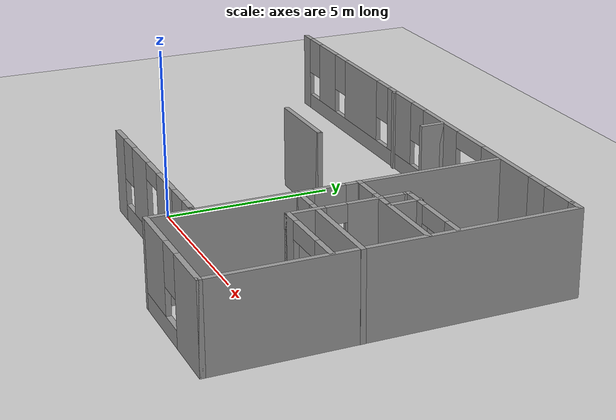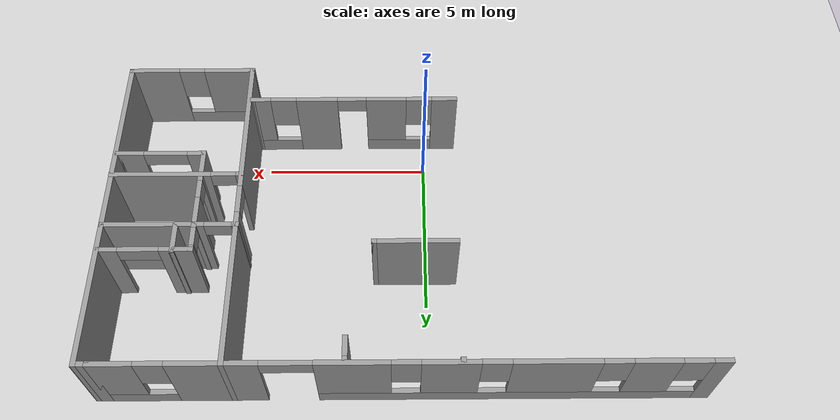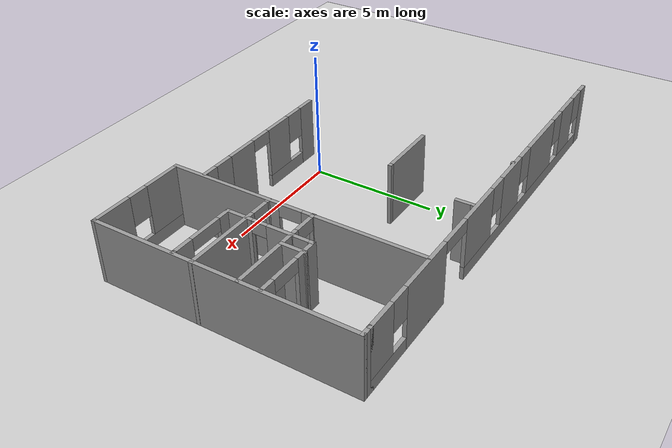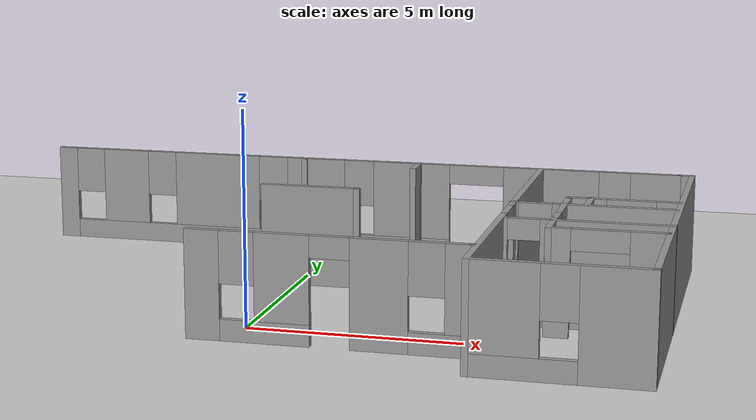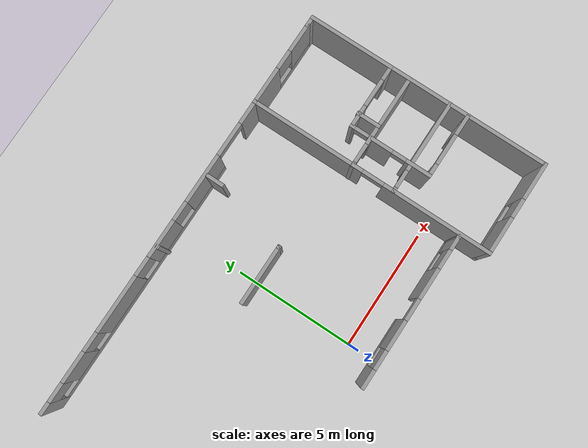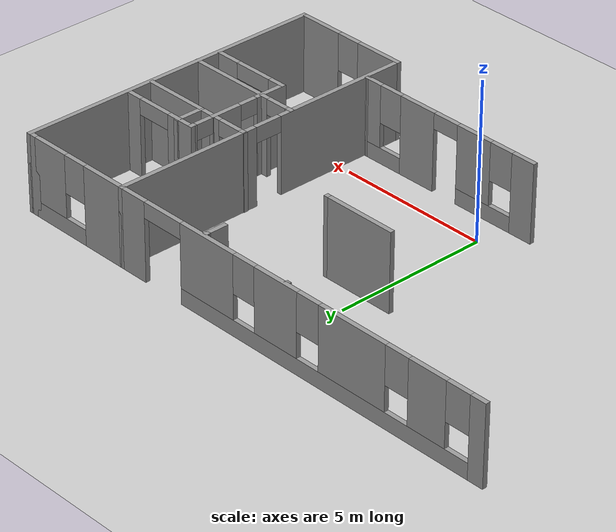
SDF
<sdf version="1.7">
 <world name="default">
  <model name="ground_plane">
   <static>1</static>
   <link name="link">
    <collision name="collision">
     <geometry><plane><normal>0 0 1</normal><size>100 100</size></plane></geometry>
     <surface>
      <contact><collide_bitmask>65535</collide_bitmask></contact>
      <friction><ode><mu>100</mu><mu2>50</mu2></ode></friction>
     </surface>
    </collision>
    <visual name="visual">
     <cast_shadows>0</cast_shadows>
     <geometry><plane><normal>0 0 1</normal><size>100 100</size></plane></geometry>
     <material>
      <script><uri>file://media/materials/scripts/gazebo.material</uri><name>Gazebo/Grey</name></script>
     </material>
    </visual>
   </link>
  </model>
  <model name="Floorplan7">
   <pose>0.685617 0.398656 0 0 -0 0</pose>
   <link name="Wall_0">
    <pose>-0.133018 7.425 0 0 -0 0</pose>
    <visual name="Wall_0_Visual_0">
     <pose>-8.24103 0 1.25 0 -0 0</pose>
     <geometry><box><size>0.517936 0.15 2.5</size></box></geometry>
     <material>
      <script><uri>file://media/materials/scripts/gazebo.material</uri><name>Gazebo/Grey</name></script>
      <ambient>1 1 1 1</ambient>
     </material>
     <meta><layer>0</layer></meta>
    </visual>
    <collision name="Wall_0_Collision_0">
     <geometry><box><size>0.517936 0.15 2.5</size></box></geometry>
     <pose>-8.24103 0 1.25 0 -0 0</pose>
    </collision>
    <visual name="Wall_0_Visual_1">
     <pose>5.19319 0 1.25 0 -0 0</pose>
     <geometry><box><size>2.48084 0.15 2.5</size></box></geometry>
     <material>
      <script><uri>file://media/materials/scripts/gazebo.material</uri><name>Gazebo/Grey</name></script>
      <ambient>1 1 1 1</ambient>
     </material>
     <meta><layer>0</layer></meta>
    </visual>
    <collision name="Wall_0_Collision_1">
     <geometry><box><size>2.48084 0.15 2.5</size></box></geometry>
     <pose>5.19319 0 1.25 0 -0 0</pose>
    </collision>
    <visual name="Wall_0_Visual_2">
     <pose>-2.72761 0 0.25 0 -0 0</pose>
     <geometry><box><size>10.5089 0.15 0.5</size></box></geometry>
     <material>
      <script><uri>file://media/materials/scripts/gazebo.material</uri><name>Gazebo/Grey</name></script>
      <ambient>1 1 1 1</ambient>
     </material>
     <meta><layer>0</layer></meta>
    </visual>
    <collision name="Wall_0_Collision_2">
     <geometry><box><size>10.5089 0.15 0.5</size></box></geometry>
     <pose>-2.72761 0 0.25 0 -0 0</pose>
    </collision>
    <visual name="Wall_0_Visual_3">
     <pose>7.4668 0 0.25 0 -0 0</pose>
     <geometry><box><size>2.06639 0.15 0.5</size></box></geometry>
     <material>
      <script><uri>file://media/materials/scripts/gazebo.material</uri><name>Gazebo/Grey</name></script>
      <ambient>1 1 1 1</ambient>
     </material>
     <meta><layer>0</layer></meta>
    </visual>
    <collision name="Wall_0_Collision_3">
     <geometry><box><size>2.06639 0.15 0.5</size></box></geometry>
     <pose>7.4668 0 0.25 0 -0 0</pose>
    </collision>
    <visual name="Wall_0_Visual_4">
     <pose>-6.53696 0 1.5 0 -0 0</pose>
     <geometry><box><size>1.29021 0.15 2</size></box></geometry>
     <material>
      <script><uri>file://media/materials/scripts/gazebo.material</uri><name>Gazebo/Grey</name></script>
      <ambient>1 1 1 1</ambient>
     </material>
     <meta><layer>0</layer></meta>
    </visual>
    <collision name="Wall_0_Collision_4">
     <geometry><box><size>1.29021 0.15 2</size></box></geometry>
     <pose>-6.53696 0 1.5 0 -0 0</pose>
    </collision>
    <visual name="Wall_0_Visual_5">
     <pose>-3.90061 0 1.5 0 -0 0</pose>
     <geometry><box><size>2.38251 0.15 2</size></box></geometry>
     <material>
      <script><uri>file://media/materials/scripts/gazebo.material</uri><name>Gazebo/Grey</name></script>
      <ambient>1 1 1 1</ambient>
     </material>
     <meta><layer>0</layer></meta>
    </visual>
    <collision name="Wall_0_Collision_5">
     <geometry><box><size>2.38251 0.15 2</size></box></geometry>
     <pose>-3.90061 0 1.5 0 -0 0</pose>
    </collision>
    <visual name="Wall_0_Visual_6">
     <pose>-1.11591 0 1.5 0 -0 0</pose>
     <geometry><box><size>1.58688 0.15 2</size></box></geometry>
     <material>
      <script><uri>file://media/materials/scripts/gazebo.material</uri><name>Gazebo/Grey</name></script>
      <ambient>1 1 1 1</ambient>
     </material>
     <meta><layer>0</layer></meta>
    </visual>
    <collision name="Wall_0_Collision_6">
     <geometry><box><size>1.58688 0.15 2</size></box></geometry>
     <pose>-1.11591 0 1.5 0 -0 0</pose>
    </collision>
    <visual name="Wall_0_Visual_7">
     <pose>1.50218 0 1.5 0 -0 0</pose>
     <geometry><box><size>2.04932 0.15 2</size></box></geometry>
     <material>
      <script><uri>file://media/materials/scripts/gazebo.material</uri><name>Gazebo/Grey</name></script>
      <ambient>1 1 1 1</ambient>
     </material>
     <meta><layer>0</layer></meta>
    </visual>
    <collision name="Wall_0_Collision_7">
     <geometry><box><size>2.04932 0.15 2</size></box></geometry>
     <pose>1.50218 0 1.5 0 -0 0</pose>
    </collision>
    <visual name="Wall_0_Visual_8">
     <pose>1.50218 0 1.5 0 -0 0</pose>
     <geometry><box><size>2.04932 0.15 2</size></box></geometry>
     <material>
      <script><uri>file://media/materials/scripts/gazebo.material</uri><name>Gazebo/Grey</name></script>
      <ambient>1 1 1 1</ambient>
     </material>
     <meta><layer>0</layer></meta>
    </visual>
    <collision name="Wall_0_Collision_8">
     <geometry><box><size>2.04932 0.15 2</size></box></geometry>
     <pose>1.50218 0 1.5 0 -0 0</pose>
    </collision>
    <visual name="Wall_0_Visual_9">
     <pose>7.8668 0 1.5 0 -0 0</pose>
     <geometry><box><size>1.26639 0.15 2</size></box></geometry>
     <material>
      <script><uri>file://media/materials/scripts/gazebo.material</uri><name>Gazebo/Grey</name></script>
      <ambient>1 1 1 1</ambient>
     </material>
     <meta><layer>0</layer></meta>
    </visual>
    <collision name="Wall_0_Collision_9">
     <geometry><box><size>1.26639 0.15 2</size></box></geometry>
     <pose>7.8668 0 1.5 0 -0 0</pose>
    </collision>
    <visual name="Wall_0_Visual_10">
     <pose>-7.58206 0 1.9 0 -0 0</pose>
     <geometry><box><size>0.8 0.15 1.2</size></box></geometry>
     <material>
      <script><uri>file://media/materials/scripts/gazebo.material</uri><name>Gazebo/Grey</name></script>
      <ambient>1 1 1 1</ambient>
     </material>
     <meta><layer>0</layer></meta>
    </visual>
    <collision name="Wall_0_Collision_10">
     <geometry><box><size>0.8 0.15 1.2</size></box></geometry>
     <pose>-7.58206 0 1.9 0 -0 0</pose>
    </collision>
    <visual name="Wall_0_Visual_11">
     <pose>6.83361 0 1.9 0 -0 0</pose>
     <geometry><box><size>0.8 0.15 1.2</size></box></geometry>
     <material>
      <script><uri>file://media/materials/scripts/gazebo.material</uri><name>Gazebo/Grey</name></script>
      <ambient>1 1 1 1</ambient>
     </material>
     <meta><layer>0</layer></meta>
    </visual>
    <collision name="Wall_0_Collision_11">
     <geometry><box><size>0.8 0.15 1.2</size></box></geometry>
     <pose>6.83361 0 1.9 0 -0 0</pose>
    </collision>
    <visual name="Wall_0_Visual_12">
     <pose>-5.49186 0 1.9 0 -0 0</pose>
     <geometry><box><size>0.8 0.15 1.2</size></box></geometry>
     <material>
      <script><uri>file://media/materials/scripts/gazebo.material</uri><name>Gazebo/Grey</name></script>
      <ambient>1 1 1 1</ambient>
     </material>
     <meta><layer>0</layer></meta>
    </visual>
    <collision name="Wall_0_Collision_12">
     <geometry><box><size>0.8 0.15 1.2</size></box></geometry>
     <pose>-5.49186 0 1.9 0 -0 0</pose>
    </collision>
    <visual name="Wall_0_Visual_13">
     <pose>-2.30935 0 1.9 0 -0 0</pose>
     <geometry><box><size>0.8 0.15 1.2</size></box></geometry>
     <material>
      <script><uri>file://media/materials/scripts/gazebo.material</uri><name>Gazebo/Grey</name></script>
      <ambient>1 1 1 1</ambient>
     </material>
     <meta><layer>0</layer></meta>
    </visual>
    <collision name="Wall_0_Collision_13">
     <geometry><box><size>0.8 0.15 1.2</size></box></geometry>
     <pose>-2.30935 0 1.9 0 -0 0</pose>
    </collision>
    <visual name="Wall_0_Visual_14">
     <pose>0.077526 0 1.9 0 -0 0</pose>
     <geometry><box><size>0.8 0.15 1.2</size></box></geometry>
     <material>
      <script><uri>file://media/materials/scripts/gazebo.material</uri><name>Gazebo/Grey</name></script>
      <ambient>1 1 1 1</ambient>
     </material>
     <meta><layer>0</layer></meta>
    </visual>
    <collision name="Wall_0_Collision_14">
     <geometry><box><size>0.8 0.15 1.2</size></box></geometry>
     <pose>0.077526 0 1.9 0 -0 0</pose>
    </collision>
    <visual name="Wall_0_Visual_15">
     <pose>3.2398 0 2.25 0 -0 0</pose>
     <geometry><box><size>1.42592 0.15 0.5</size></box></geometry>
     <material>
      <script><uri>file://media/materials/scripts/gazebo.material</uri><name>Gazebo/Grey</name></script>
      <ambient>1 1 1 1</ambient>
     </material>
     <meta><layer>0</layer></meta>
    </visual>
    <collision name="Wall_0_Collision_15">
     <geometry><box><size>1.42592 0.15 0.5</size></box></geometry>
     <pose>3.2398 0 2.25 0 -0 0</pose>
    </collision>
    <visual name="Wall_0_Visual_16">
     <pose>3.2398 0 2.25 0 -0 0</pose>
     <geometry><box><size>1.42592 0.15 0.5</size></box></geometry>
     <material>
      <script><uri>file://media/materials/scripts/gazebo.material</uri><name>Gazebo/Grey</name></script>
      <ambient>1 1 1 1</ambient>
     </material>
     <meta><layer>0</layer></meta>
    </visual>
    <collision name="Wall_0_Collision_16">
     <geometry><box><size>1.42592 0.15 0.5</size></box></geometry>
     <pose>3.2398 0 2.25 0 -0 0</pose>
    </collision>
   </link>
   <link name="Wall_1">
    <collision name="Wall_1_Collision">
     <geometry><box><size>0.5 0.15 2.5</size></box></geometry>
     <pose>0 0 1.25 0 -0 0</pose>
    </collision>
    <visual name="Wall_1_Visual">
     <pose>0 0 1.25 0 -0 0</pose>
     <geometry><box><size>0.5 0.15 2.5</size></box></geometry>
     <material>
      <script><uri>file://media/materials/scripts/gazebo.material</uri><name>Gazebo/Grey</name></script>
      <ambient>1 1 1 1</ambient>
     </material>
     <meta><layer>0</layer></meta>
    </visual>
    <pose>8.46698 7.425 0 0 -0 0</pose>
   </link>
   <link name="Wall_15">
    <pose>1.51819 -1.45127 0 0 -0 0.00068</pose>
    <visual name="Wall_15_Visual_0">
     <pose>-2.84549 0 1.25 0 -0 0</pose>
     <geometry><box><size>0.799793 0.15 2.5</size></box></geometry>
     <material>
      <script><uri>file://media/materials/scripts/gazebo.material</uri><name>Gazebo/Grey</name></script>
      <ambient>1 1 1 1</ambient>
     </material>
     <meta><layer>0</layer></meta>
    </visual>
    <collision name="Wall_15_Collision_0">
     <geometry><box><size>0.799793 0.15 2.5</size></box></geometry>
     <pose>-2.84549 0 1.25 0 -0 0</pose>
    </collision>
    <visual name="Wall_15_Visual_1">
     <pose>1.15507 0 1.25 0 -0 0</pose>
     <geometry><box><size>1.29419 0.15 2.5</size></box></geometry>
     <material>
      <script><uri>file://media/materials/scripts/gazebo.material</uri><name>Gazebo/Grey</name></script>
      <ambient>1 1 1 1</ambient>
     </material>
     <meta><layer>0</layer></meta>
    </visual>
    <collision name="Wall_15_Collision_1">
     <geometry><box><size>1.29419 0.15 2.5</size></box></geometry>
     <pose>1.15507 0 1.25 0 -0 0</pose>
    </collision>
    <visual name="Wall_15_Visual_2">
     <pose>-1.41881 0 0.25 0 -0 0</pose>
     <geometry><box><size>2.05357 0.15 0.5</size></box></geometry>
     <material>
      <script><uri>file://media/materials/scripts/gazebo.material</uri><name>Gazebo/Grey</name></script>
      <ambient>1 1 1 1</ambient>
     </material>
     <meta><layer>0</layer></meta>
    </visual>
    <collision name="Wall_15_Collision_2">
     <geometry><box><size>2.05357 0.15 0.5</size></box></geometry>
     <pose>-1.41881 0 0.25 0 -0 0</pose>
    </collision>
    <visual name="Wall_15_Visual_3">
     <pose>2.52378 0 0.25 0 -0 0</pose>
     <geometry><box><size>1.44322 0.15 0.5</size></box></geometry>
     <material>
      <script><uri>file://media/materials/scripts/gazebo.material</uri><name>Gazebo/Grey</name></script>
      <ambient>1 1 1 1</ambient>
     </material>
     <meta><layer>0</layer></meta>
    </visual>
    <collision name="Wall_15_Collision_3">
     <geometry><box><size>1.44322 0.15 0.5</size></box></geometry>
     <pose>2.52378 0 0.25 0 -0 0</pose>
    </collision>
    <visual name="Wall_15_Visual_4">
     <pose>-1.01881 0 1.5 0 -0 0</pose>
     <geometry><box><size>1.25357 0.15 2</size></box></geometry>
     <material>
      <script><uri>file://media/materials/scripts/gazebo.material</uri><name>Gazebo/Grey</name></script>
      <ambient>1 1 1 1</ambient>
     </material>
     <meta><layer>0</layer></meta>
    </visual>
    <collision name="Wall_15_Collision_4">
     <geometry><box><size>1.25357 0.15 2</size></box></geometry>
     <pose>-1.01881 0 1.5 0 -0 0</pose>
    </collision>
    <visual name="Wall_15_Visual_5">
     <pose>-1.01881 0 1.5 0 -0 0</pose>
     <geometry><box><size>1.25357 0.15 2</size></box></geometry>
     <material>
      <script><uri>file://media/materials/scripts/gazebo.material</uri><name>Gazebo/Grey</name></script>
      <ambient>1 1 1 1</ambient>
     </material>
     <meta><layer>0</layer></meta>
    </visual>
    <collision name="Wall_15_Collision_5">
     <geometry><box><size>1.25357 0.15 2</size></box></geometry>
     <pose>-1.01881 0 1.5 0 -0 0</pose>
    </collision>
    <visual name="Wall_15_Visual_6">
     <pose>2.92378 0 1.5 0 -0 0</pose>
     <geometry><box><size>0.643216 0.15 2</size></box></geometry>
     <material>
      <script><uri>file://media/materials/scripts/gazebo.material</uri><name>Gazebo/Grey</name></script>
      <ambient>1 1 1 1</ambient>
     </material>
     <meta><layer>0</layer></meta>
    </visual>
    <collision name="Wall_15_Collision_6">
     <geometry><box><size>0.643216 0.15 2</size></box></geometry>
     <pose>2.92378 0 1.5 0 -0 0</pose>
    </collision>
    <visual name="Wall_15_Visual_7">
     <pose>-2.04559 0 1.9 0 -0 0</pose>
     <geometry><box><size>0.8 0.15 1.2</size></box></geometry>
     <material>
      <script><uri>file://media/materials/scripts/gazebo.material</uri><name>Gazebo/Grey</name></script>
      <ambient>1 1 1 1</ambient>
     </material>
     <meta><layer>0</layer></meta>
    </visual>
    <collision name="Wall_15_Collision_7">
     <geometry><box><size>0.8 0.15 1.2</size></box></geometry>
     <pose>-2.04559 0 1.9 0 -0 0</pose>
    </collision>
    <visual name="Wall_15_Visual_8">
     <pose>2.20217 0 1.9 0 -0 0</pose>
     <geometry><box><size>0.8 0.15 1.2</size></box></geometry>
     <material>
      <script><uri>file://media/materials/scripts/gazebo.material</uri><name>Gazebo/Grey</name></script>
      <ambient>1 1 1 1</ambient>
     </material>
     <meta><layer>0</layer></meta>
    </visual>
    <collision name="Wall_15_Collision_8">
     <geometry><box><size>0.8 0.15 1.2</size></box></geometry>
     <pose>2.20217 0 1.9 0 -0 0</pose>
    </collision>
    <visual name="Wall_15_Visual_9">
     <pose>0.057978 0 2.25 0 -0 0</pose>
     <geometry><box><size>0.9 0.15 0.5</size></box></geometry>
     <material>
      <script><uri>file://media/materials/scripts/gazebo.material</uri><name>Gazebo/Grey</name></script>
      <ambient>1 1 1 1</ambient>
     </material>
     <meta><layer>0</layer></meta>
    </visual>
    <collision name="Wall_15_Collision_9">
     <geometry><box><size>0.9 0.15 0.5</size></box></geometry>
     <pose>0.057978 0 2.25 0 -0 0</pose>
    </collision>
    <visual name="Wall_15_Visual_10">
     <pose>0.057978 0 2.25 0 -0 0</pose>
     <geometry><box><size>0.9 0.15 0.5</size></box></geometry>
     <material>
      <script><uri>file://media/materials/scripts/gazebo.material</uri><name>Gazebo/Grey</name></script>
      <ambient>1 1 1 1</ambient>
     </material>
     <meta><layer>0</layer></meta>
    </visual>
    <collision name="Wall_15_Collision_10">
     <geometry><box><size>0.9 0.15 0.5</size></box></geometry>
     <pose>0.057978 0 2.25 0 -0 0</pose>
    </collision>
   </link>
   <link name="Wall_16">
    <collision name="Wall_16_Collision">
     <geometry><box><size>0.15 0.15 2.5</size></box></geometry>
     <pose>0 0 1.25 0 -0 0</pose>
    </collision>
    <visual name="Wall_16_Visual">
     <pose>0 0 1.25 0 -0 0</pose>
     <geometry><box><size>0.15 0.15 2.5</size></box></geometry>
     <material>
      <script><uri>file://media/materials/scripts/gazebo.material</uri><name>Gazebo/Grey</name></script>
      <ambient>1 1 1 1</ambient>
     </material>
     <meta><layer>0</layer></meta>
    </visual>
    <pose>4.68858 -1.44912 0 0 -0 0</pose>
   </link>
   <link name="Wall_2">
    <collision name="Wall_2_Collision">
     <geometry><box><size>10.25 0.15 2.5</size></box></geometry>
     <pose>0 0 1.25 0 -0 0</pose>
    </collision>
    <visual name="Wall_2_Visual">
     <pose>0 0 1.25 0 -0 0</pose>
     <geometry><box><size>10.25 0.15 2.5</size></box></geometry>
     <material>
      <script><uri>file://media/materials/scripts/gazebo.material</uri><name>Gazebo/Grey</name></script>
      <ambient>1 1 1 1</ambient>
     </material>
     <meta><layer>0</layer></meta>
    </visual>
    <pose>8.64198 2.375 0 0 -0 -1.5708</pose>
   </link>
   <link name="Wall_3">
    <collision name="Wall_3_Collision">
     <geometry><box><size>0.15 0.15 2.5</size></box></geometry>
     <pose>0 0 1.25 0 -0 0</pose>
    </collision>
    <visual name="Wall_3_Visual">
     <pose>0 0 1.25 0 -0 0</pose>
     <geometry><box><size>0.15 0.15 2.5</size></box></geometry>
     <material>
      <script><uri>file://media/materials/scripts/gazebo.material</uri><name>Gazebo/Grey</name></script>
      <ambient>1 1 1 1</ambient>
     </material>
     <meta><layer>0</layer></meta>
    </visual>
    <pose>8.64198 -2.675 0 0 -0 0</pose>
   </link>
   <link name="Wall_4">
    <pose>6.71698 -2.675 0 0 -0 3.14159</pose>
    <visual name="Wall_4_Visual_0">
     <pose>-1.20529 0 1.25 0 -0 0</pose>
     <geometry><box><size>1.58942 0.15 2.5</size></box></geometry>
     <material>
      <script><uri>file://media/materials/scripts/gazebo.material</uri><name>Gazebo/Grey</name></script>
      <ambient>1 1 1 1</ambient>
     </material>
     <meta><layer>0</layer></meta>
    </visual>
    <collision name="Wall_4_Collision_0">
     <geometry><box><size>1.58942 0.15 2.5</size></box></geometry>
     <pose>-1.20529 0 1.25 0 -0 0</pose>
    </collision>
    <visual name="Wall_4_Visual_1">
     <pose>0.794711 0 0.25 0 -0 0</pose>
     <geometry><box><size>2.41058 0.15 0.5</size></box></geometry>
     <material>
      <script><uri>file://media/materials/scripts/gazebo.material</uri><name>Gazebo/Grey</name></script>
      <ambient>1 1 1 1</ambient>
     </material>
     <meta><layer>0</layer></meta>
    </visual>
    <collision name="Wall_4_Collision_1">
     <geometry><box><size>2.41058 0.15 0.5</size></box></geometry>
     <pose>0.794711 0 0.25 0 -0 0</pose>
    </collision>
    <visual name="Wall_4_Visual_2">
     <pose>1.19471 0 1.5 0 -0 0</pose>
     <geometry><box><size>1.61058 0.15 2</size></box></geometry>
     <material>
      <script><uri>file://media/materials/scripts/gazebo.material</uri><name>Gazebo/Grey</name></script>
      <ambient>1 1 1 1</ambient>
     </material>
     <meta><layer>0</layer></meta>
    </visual>
    <collision name="Wall_4_Collision_2">
     <geometry><box><size>1.61058 0.15 2</size></box></geometry>
     <pose>1.19471 0 1.5 0 -0 0</pose>
    </collision>
    <visual name="Wall_4_Visual_3">
     <pose>-0.010578 0 1.9 0 -0 0</pose>
     <geometry><box><size>0.8 0.15 1.2</size></box></geometry>
     <material>
      <script><uri>file://media/materials/scripts/gazebo.material</uri><name>Gazebo/Grey</name></script>
      <ambient>1 1 1 1</ambient>
     </material>
     <meta><layer>0</layer></meta>
    </visual>
    <collision name="Wall_4_Collision_3">
     <geometry><box><size>0.8 0.15 1.2</size></box></geometry>
     <pose>-0.010578 0 1.9 0 -0 0</pose>
    </collision>
   </link>
   <link name="Wall_43">
    <collision name="Wall_43_Collision">
     <geometry><box><size>0.15 0.15 2.5</size></box></geometry>
     <pose>0 0 1.25 0 -0 0</pose>
    </collision>
    <visual name="Wall_43_Visual">
     <pose>0 0 1.25 0 -0 0</pose>
     <geometry><box><size>0.15 0.15 2.5</size></box></geometry>
     <material>
      <script><uri>file://media/materials/scripts/gazebo.material</uri><name>Gazebo/Grey</name></script>
      <ambient>1 1 1 1</ambient>
     </material>
     <meta><layer>0</layer></meta>
    </visual>
    <pose>-1.55812 7.36416 0 0 -0 0</pose>
   </link>
   <link name="Wall_48">
    <collision name="Wall_48_Collision">
     <geometry><box><size>2.5 0.15 2.5</size></box></geometry>
     <pose>0 0 1.25 0 -0 0</pose>
    </collision>
    <visual name="Wall_48_Visual">
     <pose>0 0 1.25 0 -0 0</pose>
     <geometry><box><size>2.5 0.15 2.5</size></box></geometry>
     <material>
      <script><uri>file://media/materials/scripts/gazebo.material</uri><name>Gazebo/Grey</name></script>
      <ambient>1 1 1 1</ambient>
     </material>
     <meta><layer>0</layer></meta>
    </visual>
    <pose>-0.362057 3.73766 0 0 -0 0</pose>
   </link>
   <link name="Wall_49">
    <collision name="Wall_49_Collision">
     <geometry><box><size>0.15 0.15 2.5</size></box></geometry>
     <pose>0 0 1.25 0 -0 0</pose>
    </collision>
    <visual name="Wall_49_Visual">
     <pose>0 0 1.25 0 -0 0</pose>
     <geometry><box><size>0.15 0.15 2.5</size></box></geometry>
     <material>
      <script><uri>file://media/materials/scripts/gazebo.material</uri><name>Gazebo/Grey</name></script>
      <ambient>1 1 1 1</ambient>
     </material>
     <meta><layer>0</layer></meta>
    </visual>
    <pose>0.824508 3.73766 0 0 -0 0</pose>
   </link>
   <link name="Wall_5">
    <pose>4.79198 2.375 0 0 -0 1.5708</pose>
    <visual name="Wall_5_Visual_0">
     <pose>-2.83659 0 1.25 0 -0 0</pose>
     <geometry><box><size>4.57682 0.15 2.5</size></box></geometry>
     <material>
      <script><uri>file://media/materials/scripts/gazebo.material</uri><name>Gazebo/Grey</name></script>
      <ambient>1 1 1 1</ambient>
     </material>
     <meta><layer>0</layer></meta>
    </visual>
    <collision name="Wall_5_Collision_0">
     <geometry><box><size>4.57682 0.15 2.5</size></box></geometry>
     <pose>-2.83659 0 1.25 0 -0 0</pose>
    </collision>
    <visual name="Wall_5_Visual_1">
     <pose>2.73841 0 1.25 0 -0 0</pose>
     <geometry><box><size>4.77318 0.15 2.5</size></box></geometry>
     <material>
      <script><uri>file://media/materials/scripts/gazebo.material</uri><name>Gazebo/Grey</name></script>
      <ambient>1 1 1 1</ambient>
     </material>
     <meta><layer>0</layer></meta>
    </visual>
    <collision name="Wall_5_Collision_1">
     <geometry><box><size>4.77318 0.15 2.5</size></box></geometry>
     <pose>2.73841 0 1.25 0 -0 0</pose>
    </collision>
    <visual name="Wall_5_Visual_2">
     <pose>-0.098182 0 2.25 0 -0 0</pose>
     <geometry><box><size>0.9 0.15 0.5</size></box></geometry>
     <material>
      <script><uri>file://media/materials/scripts/gazebo.material</uri><name>Gazebo/Grey</name></script>
      <ambient>1 1 1 1</ambient>
     </material>
     <meta><layer>0</layer></meta>
    </visual>
    <collision name="Wall_5_Collision_2">
     <geometry><box><size>0.9 0.15 0.5</size></box></geometry>
     <pose>-0.098182 0 2.25 0 -0 0</pose>
    </collision>
   </link>
   <link name="Wall_55">
    <collision name="Wall_55_Collision">
     <geometry><box><size>0.75 0.15 2.5</size></box></geometry>
     <pose>0 0 1.25 0 -0 0</pose>
    </collision>
    <visual name="Wall_55_Visual">
     <pose>0 0 1.25 0 -0 0</pose>
     <geometry><box><size>0.75 0.15 2.5</size></box></geometry>
     <material>
      <script><uri>file://media/materials/scripts/gazebo.material</uri><name>Gazebo/Grey</name></script>
      <ambient>1 1 1 1</ambient>
     </material>
     <meta><layer>0</layer></meta>
    </visual>
    <pose>1.56273 7.00529 0 0 -0 1.5708</pose>
   </link>
   <link name="Wall_56">
    <collision name="Wall_56_Collision">
     <geometry><box><size>0.15 0.15 2.5</size></box></geometry>
     <pose>0 0 1.25 0 -0 0</pose>
    </collision>
    <visual name="Wall_56_Visual">
     <pose>0 0 1.25 0 -0 0</pose>
     <geometry><box><size>0.15 0.15 2.5</size></box></geometry>
     <material>
      <script><uri>file://media/materials/scripts/gazebo.material</uri><name>Gazebo/Grey</name></script>
      <ambient>1 1 1 1</ambient>
     </material>
     <meta><layer>0</layer></meta>
    </visual>
    <pose>1.56273 7.30529 0 0 -0 0</pose>
   </link>
   <link name="Wall_58">
    <pose>7.28852 3.9678 0 0 -0 3.14159</pose>
    <visual name="Wall_58_Visual_0">
     <pose>-1.07366 0 1.25 0 -0 0</pose>
     <geometry><box><size>0.602677 0.15 2.5</size></box></geometry>
     <material>
      <script><uri>file://media/materials/scripts/gazebo.material</uri><name>Gazebo/Grey</name></script>
      <ambient>1 1 1 1</ambient>
     </material>
     <meta><layer>0</layer></meta>
    </visual>
    <collision name="Wall_58_Collision_0">
     <geometry><box><size>0.602677 0.15 2.5</size></box></geometry>
     <pose>-1.07366 0 1.25 0 -0 0</pose>
    </collision>
    <visual name="Wall_58_Visual_1">
     <pose>0.88619 0 1.25 0 -0 0</pose>
     <geometry><box><size>0.977619 0.15 2.5</size></box></geometry>
     <material>
      <script><uri>file://media/materials/scripts/gazebo.material</uri><name>Gazebo/Grey</name></script>
      <ambient>1 1 1 1</ambient>
     </material>
     <meta><layer>0</layer></meta>
    </visual>
    <collision name="Wall_58_Collision_1">
     <geometry><box><size>0.977619 0.15 2.5</size></box></geometry>
     <pose>0.88619 0 1.25 0 -0 0</pose>
    </collision>
    <visual name="Wall_58_Visual_2">
     <pose>-0.187471 0 2.25 0 -0 0</pose>
     <geometry><box><size>1.1697 0.15 0.5</size></box></geometry>
     <material>
      <script><uri>file://media/materials/scripts/gazebo.material</uri><name>Gazebo/Grey</name></script>
      <ambient>1 1 1 1</ambient>
     </material>
     <meta><layer>0</layer></meta>
    </visual>
    <collision name="Wall_58_Collision_2">
     <geometry><box><size>1.1697 0.15 0.5</size></box></geometry>
     <pose>-0.187471 0 2.25 0 -0 0</pose>
    </collision>
   </link>
   <link name="Wall_59">
    <pose>5.98852 2.29279 0 0 -0 -1.5708</pose>
    <visual name="Wall_59_Visual_0">
     <pose>-1.64083 0 1.25 0 -0 0</pose>
     <geometry><box><size>0.218348 0.15 2.5</size></box></geometry>
     <material>
      <script><uri>file://media/materials/scripts/gazebo.material</uri><name>Gazebo/Grey</name></script>
      <ambient>1 1 1 1</ambient>
     </material>
     <meta><layer>0</layer></meta>
    </visual>
    <collision name="Wall_59_Collision_0">
     <geometry><box><size>0.218348 0.15 2.5</size></box></geometry>
     <pose>-1.64083 0 1.25 0 -0 0</pose>
    </collision>
    <visual name="Wall_59_Visual_1">
     <pose>-0.437734 0 1.25 0 -0 0</pose>
     <geometry><box><size>1.03513 0.15 2.5</size></box></geometry>
     <material>
      <script><uri>file://media/materials/scripts/gazebo.material</uri><name>Gazebo/Grey</name></script>
      <ambient>1 1 1 1</ambient>
     </material>
     <meta><layer>0</layer></meta>
    </visual>
    <collision name="Wall_59_Collision_1">
     <geometry><box><size>1.03513 0.15 2.5</size></box></geometry>
     <pose>-0.437734 0 1.25 0 -0 0</pose>
    </collision>
    <visual name="Wall_59_Visual_2">
     <pose>1.20983 0 1.25 0 -0 0</pose>
     <geometry><box><size>1.08033 0.15 2.5</size></box></geometry>
     <material>
      <script><uri>file://media/materials/scripts/gazebo.material</uri><name>Gazebo/Grey</name></script>
      <ambient>1 1 1 1</ambient>
     </material>
     <meta><layer>0</layer></meta>
    </visual>
    <collision name="Wall_59_Collision_2">
     <geometry><box><size>1.08033 0.15 2.5</size></box></geometry>
     <pose>1.20983 0 1.25 0 -0 0</pose>
    </collision>
    <visual name="Wall_59_Visual_3">
     <pose>-1.24347 0 2.25 0 -0 0</pose>
     <geometry><box><size>0.576355 0.15 0.5</size></box></geometry>
     <material>
      <script><uri>file://media/materials/scripts/gazebo.material</uri><name>Gazebo/Grey</name></script>
      <ambient>1 1 1 1</ambient>
     </material>
     <meta><layer>0</layer></meta>
    </visual>
    <collision name="Wall_59_Collision_3">
     <geometry><box><size>0.576355 0.15 0.5</size></box></geometry>
     <pose>-1.24347 0 2.25 0 -0 0</pose>
    </collision>
    <visual name="Wall_59_Visual_4">
     <pose>0.374749 0 2.25 0 -0 0</pose>
     <geometry><box><size>0.589841 0.15 0.5</size></box></geometry>
     <material>
      <script><uri>file://media/materials/scripts/gazebo.material</uri><name>Gazebo/Grey</name></script>
      <ambient>1 1 1 1</ambient>
     </material>
     <meta><layer>0</layer></meta>
    </visual>
    <collision name="Wall_59_Collision_4">
     <geometry><box><size>0.589841 0.15 0.5</size></box></geometry>
     <pose>0.374749 0 2.25 0 -0 0</pose>
    </collision>
   </link>
   <link name="Wall_6">
    <collision name="Wall_6_Collision">
     <geometry><box><size>0.15 0.15 2.5</size></box></geometry>
     <pose>0 0 1.25 0 -0 0</pose>
    </collision>
    <visual name="Wall_6_Visual">
     <pose>0 0 1.25 0 -0 0</pose>
     <geometry><box><size>0.15 0.15 2.5</size></box></geometry>
     <material>
      <script><uri>file://media/materials/scripts/gazebo.material</uri><name>Gazebo/Grey</name></script>
      <ambient>1 1 1 1</ambient>
     </material>
     <meta><layer>0</layer></meta>
    </visual>
    <pose>4.79198 7.425 0 0 -0 0</pose>
   </link>
   <link name="Wall_60">
    <pose>7.28852 0.617795 0 0 -0 0</pose>
    <visual name="Wall_60_Visual_0">
     <pose>-1.08847 0 1.25 0 -0 0</pose>
     <geometry><box><size>0.573064 0.15 2.5</size></box></geometry>
     <material>
      <script><uri>file://media/materials/scripts/gazebo.material</uri><name>Gazebo/Grey</name></script>
      <ambient>1 1 1 1</ambient>
     </material>
     <meta><layer>0</layer></meta>
    </visual>
    <collision name="Wall_60_Collision_0">
     <geometry><box><size>0.573064 0.15 2.5</size></box></geometry>
     <pose>-1.08847 0 1.25 0 -0 0</pose>
    </collision>
    <visual name="Wall_60_Visual_1">
     <pose>0.93881 0 1.25 0 -0 0</pose>
     <geometry><box><size>0.87238 0.15 2.5</size></box></geometry>
     <material>
      <script><uri>file://media/materials/scripts/gazebo.material</uri><name>Gazebo/Grey</name></script>
      <ambient>1 1 1 1</ambient>
     </material>
     <meta><layer>0</layer></meta>
    </visual>
    <collision name="Wall_60_Collision_1">
     <geometry><box><size>0.87238 0.15 2.5</size></box></geometry>
     <pose>0.93881 0 1.25 0 -0 0</pose>
    </collision>
    <visual name="Wall_60_Visual_2">
     <pose>-0.149658 0 2.25 0 -0 0</pose>
     <geometry><box><size>1.30456 0.15 0.5</size></box></geometry>
     <material>
      <script><uri>file://media/materials/scripts/gazebo.material</uri><name>Gazebo/Grey</name></script>
      <ambient>1 1 1 1</ambient>
     </material>
     <meta><layer>0</layer></meta>
    </visual>
    <collision name="Wall_60_Collision_2">
     <geometry><box><size>1.30456 0.15 0.5</size></box></geometry>
     <pose>-0.149658 0 2.25 0 -0 0</pose>
    </collision>
   </link>
   <link name="Wall_61">
    <collision name="Wall_61_Collision">
     <geometry><box><size>0.15 0.15 2.5</size></box></geometry>
     <pose>0 0 1.25 0 -0 0</pose>
    </collision>
    <visual name="Wall_61_Visual">
     <pose>0 0 1.25 0 -0 0</pose>
     <geometry><box><size>0.15 0.15 2.5</size></box></geometry>
     <material>
      <script><uri>file://media/materials/scripts/gazebo.material</uri><name>Gazebo/Grey</name></script>
      <ambient>1 1 1 1</ambient>
     </material>
     <meta><layer>0</layer></meta>
    </visual>
    <pose>8.58852 0.617795 0 0 -0 0</pose>
   </link>
   <link name="Wall_63">
    <pose>6.72418 1.39212 0 0 -0 0</pose>
    <visual name="Wall_63_Visual_0">
     <pose>-1.88408 0 1.25 0 -0 0</pose>
     <geometry><box><size>0.231834 0.15 2.5</size></box></geometry>
     <material>
      <script><uri>file://media/materials/scripts/gazebo.material</uri><name>Gazebo/Grey</name></script>
      <ambient>1 1 1 1</ambient>
     </material>
     <meta><layer>0</layer></meta>
    </visual>
    <collision name="Wall_63_Collision_0">
     <geometry><box><size>0.231834 0.15 2.5</size></box></geometry>
     <pose>-1.88408 0 1.25 0 -0 0</pose>
    </collision>
    <visual name="Wall_63_Visual_1">
     <pose>0.485006 0 1.25 0 -0 0</pose>
     <geometry><box><size>3.02999 0.15 2.5</size></box></geometry>
     <material>
      <script><uri>file://media/materials/scripts/gazebo.material</uri><name>Gazebo/Grey</name></script>
      <ambient>1 1 1 1</ambient>
     </material>
     <meta><layer>0</layer></meta>
    </visual>
    <collision name="Wall_63_Collision_1">
     <geometry><box><size>3.02999 0.15 2.5</size></box></geometry>
     <pose>0.485006 0 1.25 0 -0 0</pose>
    </collision>
    <visual name="Wall_63_Visual_2">
     <pose>-1.39908 0 2.25 0 -0 0</pose>
     <geometry><box><size>0.738178 0.15 0.5</size></box></geometry>
     <material>
      <script><uri>file://media/materials/scripts/gazebo.material</uri><name>Gazebo/Grey</name></script>
      <ambient>1 1 1 1</ambient>
     </material>
     <meta><layer>0</layer></meta>
    </visual>
    <collision name="Wall_63_Collision_2">
     <geometry><box><size>0.738178 0.15 0.5</size></box></geometry>
     <pose>-1.39908 0 2.25 0 -0 0</pose>
    </collision>
   </link>
   <link name="Wall_65">
    <pose>6.69721 3.1452 0 0 -0 0</pose>
    <visual name="Wall_65_Visual_0">
     <pose>-1.89083 0 1.25 0 -0 0</pose>
     <geometry><box><size>0.218348 0.15 2.5</size></box></geometry>
     <material>
      <script><uri>file://media/materials/scripts/gazebo.material</uri><name>Gazebo/Grey</name></script>
      <ambient>1 1 1 1</ambient>
     </material>
     <meta><layer>0</layer></meta>
    </visual>
    <collision name="Wall_65_Collision_0">
     <geometry><box><size>0.218348 0.15 2.5</size></box></geometry>
     <pose>-1.89083 0 1.25 0 -0 0</pose>
    </collision>
    <visual name="Wall_65_Visual_1">
     <pose>0.505233 0 1.25 0 -0 0</pose>
     <geometry><box><size>2.98953 0.15 2.5</size></box></geometry>
     <material>
      <script><uri>file://media/materials/scripts/gazebo.material</uri><name>Gazebo/Grey</name></script>
      <ambient>1 1 1 1</ambient>
     </material>
     <meta><layer>0</layer></meta>
    </visual>
    <collision name="Wall_65_Collision_1">
     <geometry><box><size>2.98953 0.15 2.5</size></box></geometry>
     <pose>0.505233 0 1.25 0 -0 0</pose>
    </collision>
    <visual name="Wall_65_Visual_2">
     <pose>-1.38559 0 2.25 0 -0 0</pose>
     <geometry><box><size>0.792118 0.15 0.5</size></box></geometry>
     <material>
      <script><uri>file://media/materials/scripts/gazebo.material</uri><name>Gazebo/Grey</name></script>
      <ambient>1 1 1 1</ambient>
     </material>
     <meta><layer>0</layer></meta>
    </visual>
    <collision name="Wall_65_Collision_2">
     <geometry><box><size>0.792118 0.15 0.5</size></box></geometry>
     <pose>-1.38559 0 2.25 0 -0 0</pose>
    </collision>
   </link>
   <link name="Wall_67">
    <collision name="Wall_67_Collision">
     <geometry><box><size>1 0.15 2.5</size></box></geometry>
     <pose>0 0 1.25 0 -0 0</pose>
    </collision>
    <visual name="Wall_67_Visual">
     <pose>0 0 1.25 0 -0 0</pose>
     <geometry><box><size>1 0.15 2.5</size></box></geometry>
     <material>
      <script><uri>file://media/materials/scripts/gazebo.material</uri><name>Gazebo/Grey</name></script>
      <ambient>1 1 1 1</ambient>
     </material>
     <meta><layer>0</layer></meta>
    </visual>
    <pose>6.5118 3.58368 0 0 -0 1.5708</pose>
   </link>
   <link name="Wall_68">
    <collision name="Wall_68_Collision">
     <geometry><box><size>0.15 0.15 2.5</size></box></geometry>
     <pose>0 0 1.25 0 -0 0</pose>
    </collision>
    <visual name="Wall_68_Visual">
     <pose>0 0 1.25 0 -0 0</pose>
     <geometry><box><size>0.15 0.15 2.5</size></box></geometry>
     <material>
      <script><uri>file://media/materials/scripts/gazebo.material</uri><name>Gazebo/Grey</name></script>
      <ambient>1 1 1 1</ambient>
     </material>
     <meta><layer>0</layer></meta>
    </visual>
    <pose>6.5118 4.00868 0 0 -0 0</pose>
   </link>
   <static>1</static>
  </model>
 </world>
</sdf>
